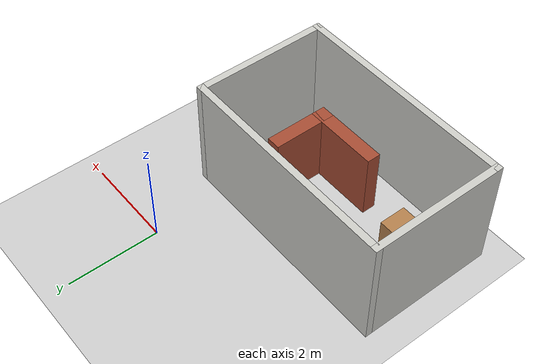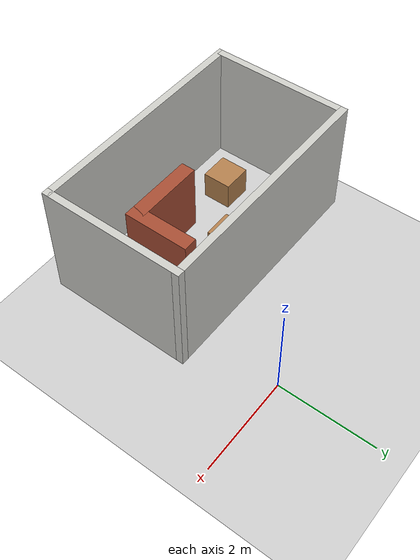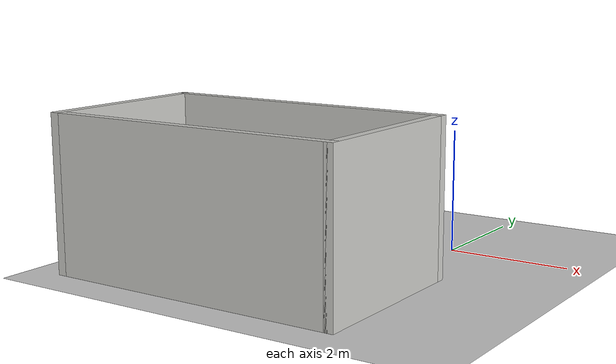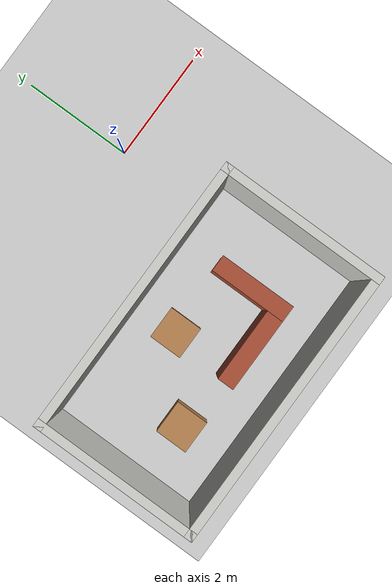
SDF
<sdf version="1.6">
 <world name="default">
  <light name="sun" type="directional">
   <pose>0 0 10 0 -0 0</pose>
   <diffuse>0.8 0.8 0.8 1</diffuse>
   <specular>0.2 0.2 0.2 1</specular>
   <attenuation>
    <range>1000</range>
    <constant>0.9</constant>
    <linear>0.01</linear>
    <quadratic>0.001</quadratic>
   </attenuation>
   <direction>-0.5 0.1 -0.9</direction>
  </light>
  <model name="ground_plane">
   <static>1</static>
   <link name="link">
    <collision name="collision">
     <geometry><plane><normal>0 0 1</normal><size>100 100</size></plane></geometry>
     <surface><friction><ode><mu>100</mu><mu2>50</mu2></ode></friction></surface>
    </collision>
    <visual name="visual">
     <cast_shadows>0</cast_shadows>
     <geometry><plane><normal>0 0 1</normal><size>100 100</size></plane></geometry>
     <material>
      <script><uri>file://media/materials/scripts/gazebo.material</uri><name>Gazebo/Grey</name></script>
     </material>
    </visual>
   </link>
  </model>
  <gravity>0 0 -9.8</gravity>
  <magnetic_field>6e-06 2.3e-05 -4.2e-05</magnetic_field>
  <atmosphere type="adiabatic"/>
  <physics name="default_physics" default="0" type="ode">
   <max_step_size>0.001</max_step_size>
   <real_time_factor>1</real_time_factor>
   <real_time_update_rate>1000</real_time_update_rate>
  </physics>
  <scene><ambient>0.4 0.4 0.4 1</ambient><background>0.7 0.7 0.7 1</background><shadows>1</shadows></scene>
  <spherical_coordinates>
   <surface_model>EARTH_WGS84</surface_model>
   <latitude_deg>0</latitude_deg>
   <longitude_deg>0</longitude_deg>
   <elevation>0</elevation>
   <heading_deg>0</heading_deg>
  </spherical_coordinates>
  <model name="env4">
   <pose>-1.835 -3.095 0 0 -0 0</pose>
   <link name="Wall_0">
    <collision name="Wall_0_Collision">
     <geometry><box><size>3 0.15 2.5</size></box></geometry>
     <pose>0 0 1.25 0 -0 0</pose>
    </collision>
    <visual name="Wall_0_Visual">
     <pose>0 0 1.25 0 -0 0</pose>
     <geometry><box><size>3 0.15 2.5</size></box></geometry>
     <material>
      <script><uri>file://media/materials/scripts/gazebo.material</uri><name>Gazebo/CeilingTiled</name></script>
      <ambient>0.760784 0.662745 0.627451 1</ambient>
     </material>
     <meta><layer>0</layer></meta>
    </visual>
    <pose>-2.425 0 0 0 0 -1.5708</pose>
   </link>
   <link name="Wall_1">
    <collision name="Wall_1_Collision">
     <geometry><box><size>5 0.15 2.5</size></box></geometry>
     <pose>0 0 1.25 0 -0 0</pose>
    </collision>
    <visual name="Wall_1_Visual">
     <pose>0 0 1.25 0 -0 0</pose>
     <geometry><box><size>5 0.15 2.5</size></box></geometry>
     <material>
      <script><uri>file://media/materials/scripts/gazebo.material</uri><name>Gazebo/CeilingTiled</name></script>
      <ambient>0.760784 0.662745 0.627451 1</ambient>
     </material>
     <meta><layer>0</layer></meta>
    </visual>
    <pose>0 -1.425 0 0 -0 0</pose>
   </link>
   <link name="Wall_10">
    <collision name="Wall_10_Collision">
     <geometry><box><size>1.4 0.3 1.5</size></box></geometry>
     <pose>0 0 0.75 0 -0 0</pose>
    </collision>
    <visual name="Wall_10_Visual">
     <pose>0 0 0.75 0 -0 0</pose>
     <geometry><box><size>1.4 0.3 1.5</size></box></geometry>
     <material>
      <script><uri>file://media/materials/scripts/gazebo.material</uri><name>Gazebo/Bricks</name></script>
      <ambient>1 1 1 1</ambient>
     </material>
     <meta><layer>0</layer></meta>
    </visual>
    <pose>1.205 -0.015 0 0 -0 1.5708</pose>
   </link>
   <link name="Wall_2">
    <collision name="Wall_2_Collision">
     <geometry><box><size>3 0.15 2.5</size></box></geometry>
     <pose>0 0 1.25 0 -0 0</pose>
    </collision>
    <visual name="Wall_2_Visual">
     <pose>0 0 1.25 0 -0 0</pose>
     <geometry><box><size>3 0.15 2.5</size></box></geometry>
     <material>
      <script><uri>file://media/materials/scripts/gazebo.material</uri><name>Gazebo/CeilingTiled</name></script>
      <ambient>0.760784 0.662745 0.627451 1</ambient>
     </material>
     <meta><layer>0</layer></meta>
    </visual>
    <pose>2.425 0 0 0 -0 1.5708</pose>
   </link>
   <link name="Wall_3">
    <collision name="Wall_3_Collision">
     <geometry><box><size>5 0.15 2.5</size></box></geometry>
     <pose>0 0 1.25 0 -0 0</pose>
    </collision>
    <visual name="Wall_3_Visual">
     <pose>0 0 1.25 0 -0 0</pose>
     <geometry><box><size>5 0.15 2.5</size></box></geometry>
     <material>
      <script><uri>file://media/materials/scripts/gazebo.material</uri><name>Gazebo/CeilingTiled</name></script>
      <ambient>0.760784 0.662745 0.627451 1</ambient>
     </material>
     <meta><layer>0</layer></meta>
    </visual>
    <pose>0 1.425 0 0 -0 3.14159</pose>
   </link>
   <link name="Wall_5">
    <collision name="Wall_5_Collision">
     <geometry><box><size>0.61 0.6 0.6</size></box></geometry>
     <pose>0 0 0.3 0 -0 0</pose>
    </collision>
    <visual name="Wall_5_Visual">
     <pose>0 0 0.3 0 -0 0</pose>
     <geometry><box><size>0.61 0.6 0.6</size></box></geometry>
     <material>
      <script><uri>file://media/materials/scripts/gazebo.material</uri><name>Gazebo/Wood</name></script>
      <ambient>1 1 1 1</ambient>
     </material>
     <meta><layer>0</layer></meta>
    </visual>
    <pose>-0.125 0.56 0 0 0 -1.5708</pose>
   </link>
   <link name="Wall_7">
    <collision name="Wall_7_Collision">
     <geometry><box><size>0.61 0.6 0.6</size></box></geometry>
     <pose>0 0 0.3 0 -0 0</pose>
    </collision>
    <visual name="Wall_7_Visual">
     <pose>0 0 0.3 0 -0 0</pose>
     <geometry><box><size>0.61 0.6 0.6</size></box></geometry>
     <material>
      <script><uri>file://media/materials/scripts/gazebo.material</uri><name>Gazebo/Wood</name></script>
      <ambient>1 1 1 1</ambient>
     </material>
     <meta><layer>0</layer></meta>
    </visual>
    <pose>-1.34 -0.455 0 0 -0 0</pose>
   </link>
   <link name="Wall_9">
    <collision name="Wall_9_Collision">
     <geometry><box><size>1.65 0.3 1.5</size></box></geometry>
     <pose>0 0 0.75 0 -0 0</pose>
    </collision>
    <visual name="Wall_9_Visual">
     <pose>0 0 0.75 0 -0 0</pose>
     <geometry><box><size>1.65 0.3 1.5</size></box></geometry>
     <material>
      <script><uri>file://media/materials/scripts/gazebo.material</uri><name>Gazebo/Bricks</name></script>
      <ambient>1 1 1 1</ambient>
     </material>
     <meta><layer>0</layer></meta>
    </visual>
    <pose>0.53 -0.565 0 0 -0 0</pose>
   </link>
   <static>1</static>
  </model>
 </world>
</sdf>
